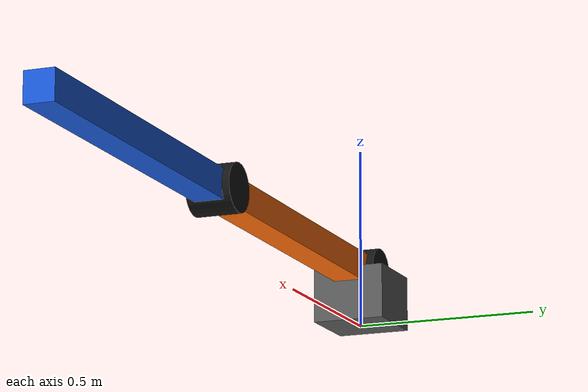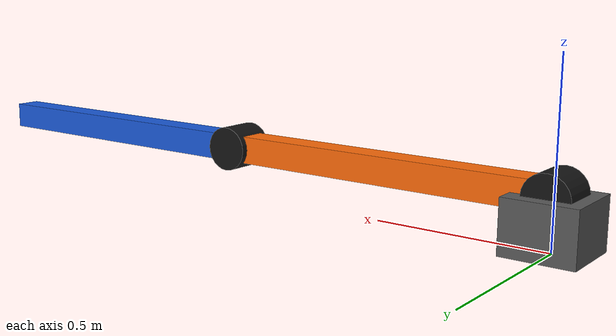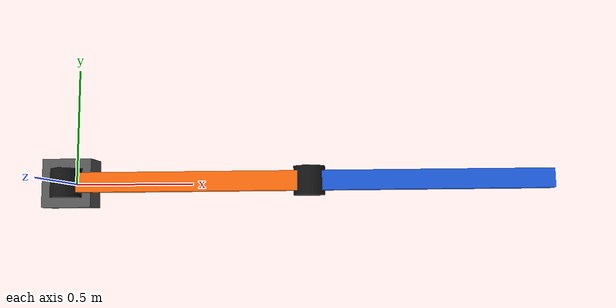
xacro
<?xml version="1.0"?>

<robot name="robot_control_lab_2r"
       xmlns:xacro="http://www.ros.org/wiki/xacro">

  <!-- Geometric parameters  -->

  <xacro:property name="PI" value="3.141592653589793"/>

  <xacro:property name="L1" value="1.0"/>
  <xacro:property name="L2" value="1.0"/>

  <xacro:property name="link_width" value="0.08"/>

  <xacro:property name="base_height" value="0.15"/>
  <xacro:property name="base_width" value="0.20"/>

  <!-- Dynamic parameters    -->

  <xacro:property name="m1" value="1.0"/>
  <xacro:property name="m2" value="1.0"/>

  <xacro:property name="base_mass" value="5.0"/>

  <xacro:property name="damping1" value="0.7"/>
  <xacro:property name="damping2" value="0.7"/>

  <!-- Visual materials      -->

  <material name="base_gray">
    <color rgba="0.35 0.35 0.35 1.0"/>
  </material>

  <material name="link1_orange">
    <color rgba="1.0 0.42 0.04 1.0"/>
  </material>

  <material name="link2_blue">
    <color rgba="0.10 0.35 0.85 1.0"/>
  </material>

  <material name="joint_dark">
    <color rgba="0.08 0.08 0.08 1.0"/>
  </material>

  <!-- World and fixed base                                      -->
  <!-- base_link is located at the center of joint1.             -->
  <!-- The physical pedestal extends downward to the ground.     -->

  <link name="world"/>

  <joint name="world_to_base" type="fixed">
    <parent link="world"/>
    <child link="base_link"/>
    <origin xyz="0 0 ${base_height}" rpy="0 0 0"/>
  </joint>

  <link name="base_link">

    <visual>
      <origin xyz="0 0 ${-base_height/2}" rpy="0 0 0"/>
      <geometry>
        <box size="${base_width} ${base_width} ${base_height}"/>
      </geometry>
      <material name="base_gray"/>
    </visual>

    <collision>
      <origin xyz="0 0 ${-base_height/2}" rpy="0 0 0"/>
      <geometry>
        <box size="${base_width} ${base_width} ${base_height}"/>
      </geometry>
    </collision>

    <inertial>
      <origin xyz="0 0 ${-base_height/2}" rpy="0 0 0"/>
      <mass value="${base_mass}"/>
      <inertia
        ixx="${base_mass/12.0*(base_width*base_width + base_height*base_height)}"
        ixy="0.0"
        ixz="0.0"
        iyy="${base_mass/12.0*(base_width*base_width + base_height*base_height)}"
        iyz="0.0"
        izz="${base_mass/12.0*(base_width*base_width + base_width*base_width)}"/>
    </inertial>

  </link>

  <!-- Joint 1                                                   -->
  <!-- q1 = 0 => link1 aligned with +x                           -->
  <!-- positive q1 rotates link1 from +x toward +z               -->

  <joint name="joint1" type="continuous">
    <parent link="base_link"/>
    <child link="link1"/>
    <origin xyz="0 0 0" rpy="0 0 0"/>
    <axis xyz="0 -1 0"/>
    <dynamics damping="${damping1}" friction="0.0"/>
  </joint>

  <!-- Link 1                                                    -->
  <!-- Frame origin: joint1                                      -->
  <!-- Length: L1                                                -->
  <!-- Center of mass: [L1/2, 0, 0]                             -->

  <link name="link1">

    <visual name="link1_bar">
      <origin xyz="${L1/2} 0 0" rpy="0 0 0"/>
      <geometry>
        <box size="${L1} ${link_width} ${link_width}"/>
      </geometry>
      <material name="link1_orange"/>
    </visual>

    <!-- Visual marker for joint1 -->
    <visual name="joint1_marker">
      <origin xyz="0 0 0" rpy="${PI/2} 0 0"/>
      <geometry>
        <cylinder radius="0.065" length="0.12"/>
      </geometry>
      <material name="joint_dark"/>
    </visual>

    <collision>
      <origin xyz="${L1/2} 0 0" rpy="0 0 0"/>
      <geometry>
        <box size="${L1} ${link_width} ${link_width}"/>
      </geometry>
    </collision>

    <inertial>
      <origin xyz="${L1/2} 0 0" rpy="0 0 0"/>
      <mass value="${m1}"/>
      <inertia
        ixx="${m1/12.0*(link_width*link_width + link_width*link_width)}"
        ixy="0.0"
        ixz="0.0"
        iyy="${m1/12.0*(L1*L1 + link_width*link_width)}"
        iyz="0.0"
        izz="${m1/12.0*(L1*L1 + link_width*link_width)}"/>
    </inertial>

  </link>

  <!-- Joint 2                                                   -->
  <!-- Located exactly L1 from joint1. No geometric offset.      -->
  <!-- q2 is relative to link1.                                  -->

  <joint name="joint2" type="continuous">
    <parent link="link1"/>
    <child link="link2"/>
    <origin xyz="${L1} 0 0" rpy="0 0 0"/>
    <axis xyz="0 -1 0"/>
    <dynamics damping="${damping2}" friction="0.0"/>
  </joint>

  <!-- Link 2                                                    -->
  <!-- Frame origin: joint2                                      -->
  <!-- Length: L2                                                -->
  <!-- Center of mass: [L2/2, 0, 0]                             -->

  <link name="link2">

    <visual name="link2_bar">
      <origin xyz="${L2/2} 0 0" rpy="0 0 0"/>
      <geometry>
        <box size="${L2} ${link_width} ${link_width}"/>
      </geometry>
      <material name="link2_blue"/>
    </visual>

    <!-- Visual marker for joint2 -->
    <visual name="joint2_marker">
      <origin xyz="0 0 0" rpy="${PI/2} 0 0"/>
      <geometry>
        <cylinder radius="0.065" length="0.12"/>
      </geometry>
      <material name="joint_dark"/>
    </visual>

    <collision>
      <origin xyz="${L2/2} 0 0" rpy="0 0 0"/>
      <geometry>
        <box size="${L2} ${link_width} ${link_width}"/>
      </geometry>
    </collision>

    <inertial>
      <origin xyz="${L2/2} 0 0" rpy="0 0 0"/>
      <mass value="${m2}"/>
      <inertia
        ixx="${m2/12.0*(link_width*link_width + link_width*link_width)}"
        ixy="0.0"
        ixz="0.0"
        iyy="${m2/12.0*(L2*L2 + link_width*link_width)}"
        iyz="0.0"
        izz="${m2/12.0*(L2*L2 + link_width*link_width)}"/>
    </inertial>

  </link>

  <!-- End-effector reference frame: no mass, no geometry -->
  <link name="ee_link"/>

  <joint name="link2_to_ee" type="fixed">
    <parent link="link2"/>
    <child link="ee_link"/>
    <origin xyz="${L2} 0 0" rpy="0 0 0"/>
  </joint>

  <!-- Gazebo appearance     -->

  <gazebo reference="base_link">
    <material>
      <diffuse>0.35 0.35 0.35 1</diffuse>
      <ambient>0.35 0.35 0.35 1</ambient>
    </material>
  </gazebo>

  <gazebo reference="link1">
    <material>
      <diffuse>1.0 0.42 0.04 1</diffuse>
      <ambient>1.0 0.42 0.04 1</ambient>
    </material>
  </gazebo>

  <gazebo reference="link2">
    <material>
      <diffuse>0.10 0.35 0.85 1</diffuse>
      <ambient>0.10 0.35 0.85 1</ambient>
    </material>
  </gazebo>

  <!-- ros2_control          -->

  <ros2_control name="GazeboSystem" type="system">
    <hardware>
      <plugin>gz_ros2_control/GazeboSimSystem</plugin>
    </hardware>

    <joint name="joint1">
      <command_interface name="effort"/>
      <state_interface name="position"/>
      <state_interface name="velocity"/>
      <state_interface name="effort"/>
    </joint>

    <joint name="joint2">
      <command_interface name="effort"/>
      <state_interface name="position"/>
      <state_interface name="velocity"/>
      <state_interface name="effort"/>
    </joint>
  </ros2_control>

  <!-- Connect ros2_control to Gazebo -->
  <gazebo>
    <plugin filename="gz_ros2_control-system"
            name="gz_ros2_control::GazeboSimROS2ControlPlugin">
      <parameters>$(find robot_control_lab_2r)/config/controllers.yaml</parameters>
    </plugin>
  </gazebo>

</robot>
